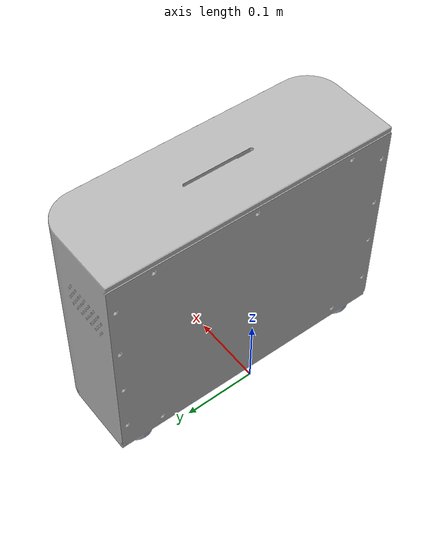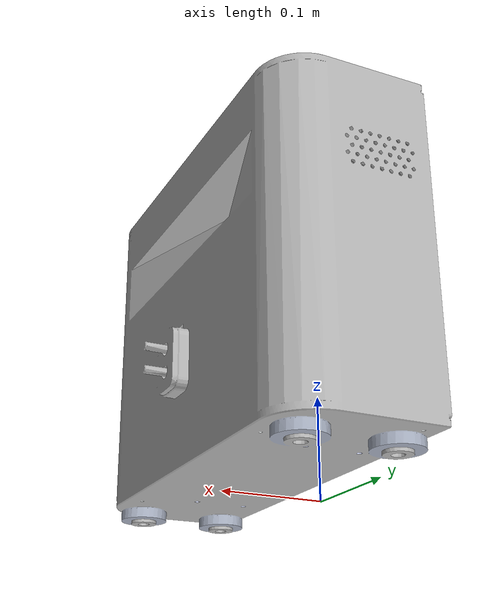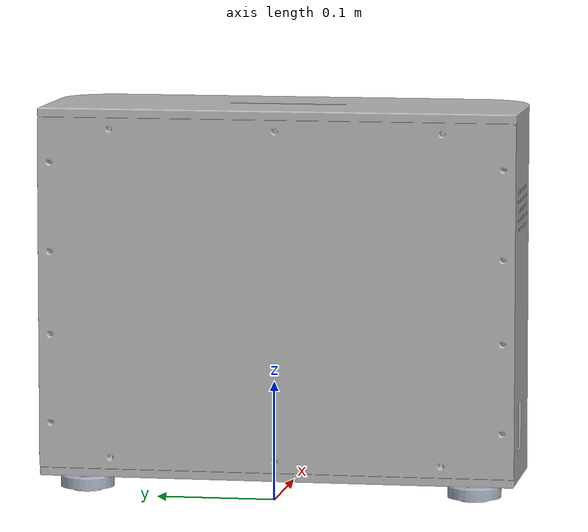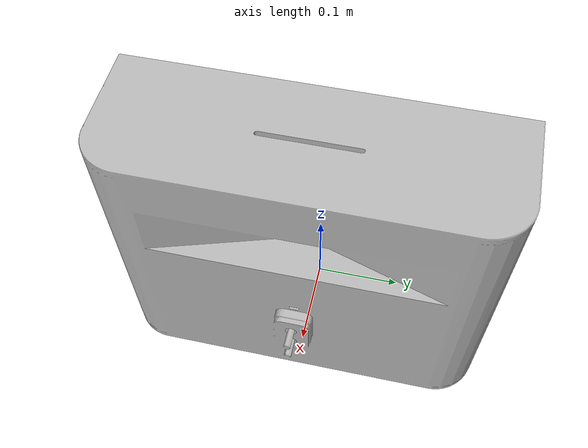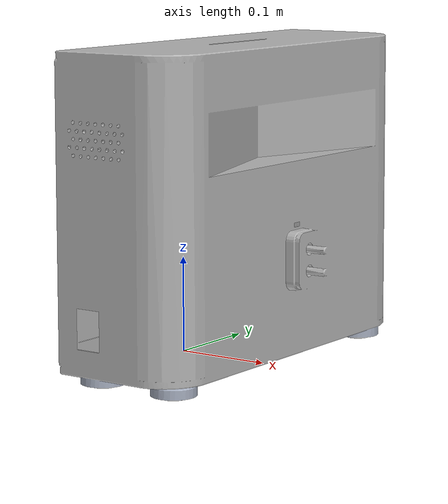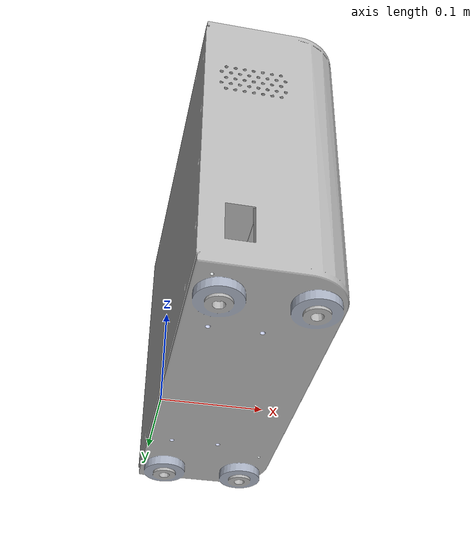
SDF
<?xml version='1.0'?>
<sdf version='1.7'>
  <model name='charging_station'>
      <link name='link'>
        <visual name='visual'>
          <geometry>
            <mesh>
              <uri>meshes/charging_station.dae</uri>
            </mesh>
          </geometry>
        </visual>
        <collision name='collision'>
          <geometry>
            <mesh>
              <uri>meshes/charging_station.stl</uri>
            </mesh>
          </geometry>
        </collision>
        <pose>0 0 0 0 0 0</pose>
        <inertial>
          <pose>0 0 0 0 0 0</pose>
          <mass>1</mass>
          <inertia>
            <ixx>1</ixx>
            <ixy>0</ixy>
            <ixz>0</ixz>
            <iyy>1</iyy>
            <iyz>0</iyz>
            <izz>1</izz>
          </inertia>
        </inertial>
        <enable_wind>false</enable_wind>
      </link>
      <pose>0 0 0 0 0 0</pose>
      <static>true</static>
      <self_collide>false</self_collide>
    </model>
</sdf>
